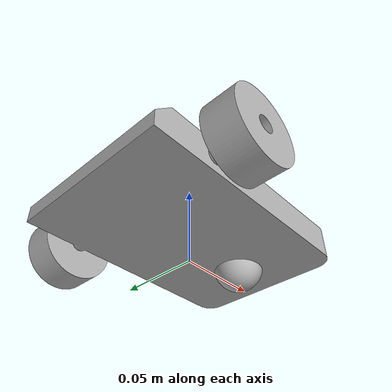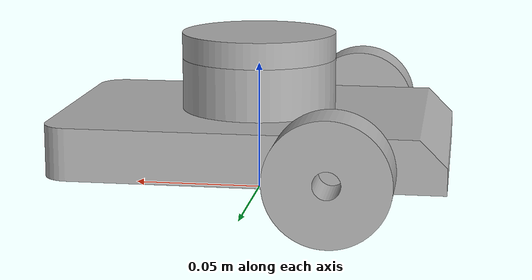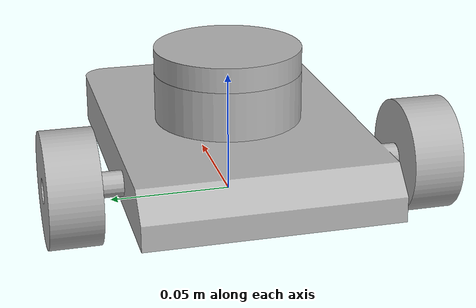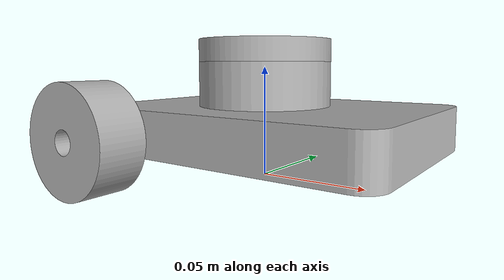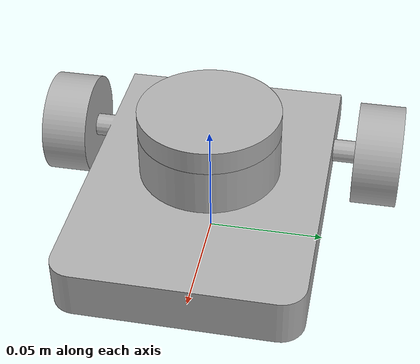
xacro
<?xml version="1.0" ?>
<robot name="rmpbot01" xmlns:xacro="http://www.ros.org/wiki/xacro">

<xacro:include filename="$(find rmpbot01_description)/urdf/materials.xacro" />
<xacro:include filename="$(find rmpbot01_description)/urdf/rmpbot01.trans" />
<xacro:include filename="$(find rmpbot01_description)/urdf/rmpbot01.gazebo" />
<link name="base_link">
  <inertial>
    <origin xyz="0.0006838460087994497 2.5818769471054665e-17 0.025615984582858856" rpy="0 0 0"/>
    <mass value="2.7652492954482564"/>
    <inertia ixx="0.002294" iyy="0.004534" izz="0.006344" ixy="-0.0" iyz="0.0" ixz="-1.3e-05"/>
  </inertial>
  <visual>
    <origin xyz="0 0 0" rpy="0 0 0"/>
    <geometry>
      <mesh filename="package://rmpbot01_description/meshes/base_link.stl" scale="0.001 0.001 0.001"/>
    </geometry>
    <material name="silver"/>
  </visual>
  <collision>
    <origin xyz="0 0 0" rpy="0 0 0"/>
    <geometry>
      <mesh filename="package://rmpbot01_description/meshes/base_link.stl" scale="0.001 0.001 0.001"/>
    </geometry>
  </collision>
</link>

<link name="lidar_1">
  <inertial>
    <origin xyz="5.026061718855929e-18 0.0 0.0050000000000000044" rpy="0 0 0"/>
    <mass value="0.2219535209761188"/>
    <inertia ixx="5.2e-05" iyy="5.2e-05" izz="0.0001" ixy="0.0" iyz="0.0" ixz="-0.0"/>
  </inertial>
  <visual>
    <origin xyz="-0.0 -0.0 -0.0525" rpy="0 0 0"/>
    <geometry>
      <mesh filename="package://rmpbot01_description/meshes/lidar_1.stl" scale="0.001 0.001 0.001"/>
    </geometry>
    <material name="silver"/>
  </visual>
  <collision>
    <origin xyz="-0.0 -0.0 -0.0525" rpy="0 0 0"/>
    <geometry>
      <mesh filename="package://rmpbot01_description/meshes/lidar_1.stl" scale="0.001 0.001 0.001"/>
    </geometry>
  </collision>
</link>

<link name="right_wheel_1">
  <inertial>
    <origin xyz="-2.713801405818117e-14 -0.009999999999999981 -3.469446951953614e-18" rpy="0 0 0"/>
    <mass value="0.2373669599327933"/>
    <inertia ixx="3.9e-05" iyy="6.3e-05" izz="3.9e-05" ixy="-0.0" iyz="0.0" ixz="-0.0"/>
  </inertial>
  <visual>
    <origin xyz="0.035 0.06 -0.0225" rpy="0 0 0"/>
    <geometry>
      <mesh filename="package://rmpbot01_description/meshes/right_wheel_1.stl" scale="0.001 0.001 0.001"/>
    </geometry>
    <material name="silver"/>
  </visual>
  <collision>
    <origin xyz="0.035 0.06 -0.0225" rpy="0 0 0"/>
    <geometry>
      <mesh filename="package://rmpbot01_description/meshes/right_wheel_1.stl" scale="0.001 0.001 0.001"/>
    </geometry>
  </collision>
</link>

<link name="left_wheel_1">
  <inertial>
    <origin xyz="-2.713801405818117e-14 0.009999999999999981 -3.469446951953614e-18" rpy="0 0 0"/>
    <mass value="0.2373669599327933"/>
    <inertia ixx="3.9e-05" iyy="6.3e-05" izz="3.9e-05" ixy="0.0" iyz="-0.0" ixz="-0.0"/>
  </inertial>
  <visual>
    <origin xyz="0.035 -0.06 -0.0225" rpy="0 0 0"/>
    <geometry>
      <mesh filename="package://rmpbot01_description/meshes/left_wheel_1.stl" scale="0.001 0.001 0.001"/>
    </geometry>
    <material name="silver"/>
  </visual>
  <collision>
    <origin xyz="0.035 -0.06 -0.0225" rpy="0 0 0"/>
    <geometry>
      <mesh filename="package://rmpbot01_description/meshes/left_wheel_1.stl" scale="0.001 0.001 0.001"/>
    </geometry>
  </collision>
</link>

<link name="caster_1">
  <inertial>
    <origin xyz="-0.029999999999999978 2.2594731004659047e-17 -0.0045901960387913065" rpy="0 0 0"/>
    <mass value="0.04320069502262114"/>
    <inertia ixx="2e-06" iyy="2e-06" izz="4e-06" ixy="-0.0" iyz="-0.0" ixz="0.0"/>
  </inertial>
  <visual>
    <origin xyz="-0.075 -0.0 -0.0125" rpy="0 0 0"/>
    <geometry>
      <mesh filename="package://rmpbot01_description/meshes/caster_1.stl" scale="0.001 0.001 0.001"/>
    </geometry>
    <material name="silver"/>
  </visual>
  <collision>
    <origin xyz="-0.075 -0.0 -0.0125" rpy="0 0 0"/>
    <geometry>
      <mesh filename="package://rmpbot01_description/meshes/caster_1.stl" scale="0.001 0.001 0.001"/>
    </geometry>
  </collision>
</link>

<joint name="Rigid 1" type="fixed">
  <origin xyz="0.0 0.0 0.0525" rpy="0 0 0"/>
  <parent link="base_link"/>
  <child link="lidar_1"/>
</joint>

<joint name="Revolute 2" type="continuous">
  <origin xyz="-0.035 -0.06 0.0225" rpy="0 0 0"/>
  <parent link="base_link"/>
  <child link="right_wheel_1"/>
  <axis xyz="0.0 1.0 0.0"/>
</joint>

<joint name="Revolute 3" type="continuous">
  <origin xyz="-0.035 0.06 0.0225" rpy="0 0 0"/>
  <parent link="base_link"/>
  <child link="left_wheel_1"/>
  <axis xyz="0.0 1.0 0.0"/>
</joint>

<joint name="Rigid 4" type="fixed">
  <origin xyz="0.075 0.0 0.0125" rpy="0 0 0"/>
  <parent link="base_link"/>
  <child link="caster_1"/>
</joint>

</robot>

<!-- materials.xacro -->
<robot name="rmpbot01" xmlns:xacro="http://www.ros.org/wiki/xacro" >

<material name="silver">
  <color rgba="0.700 0.700 0.700 1.000"/>
</material>

</robot>

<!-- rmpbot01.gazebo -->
<robot name="rmpbot01" xmlns:xacro="http://www.ros.org/wiki/xacro" >

<xacro:property name="body_color" value="Gazebo/Silver" />

<gazebo>
  <plugin name="control" filename="libgazebo_ros_control.so"/>
</gazebo>
<gazebo reference="base_link">
  <material>${body_color}</material>
  <mu1>0.2</mu1>
  <mu2>0.2</mu2>
  <selfCollide>true</selfCollide>
  <gravity>true</gravity>
</gazebo>

<gazebo reference="lidar_1">
  <material>${body_color}</material>
  <mu1>0.2</mu1>
  <mu2>0.2</mu2>
  <selfCollide>true</selfCollide>
</gazebo>

<gazebo reference="right_wheel_1">
  <material>${body_color}</material>
  <mu1>0.2</mu1>
  <mu2>0.2</mu2>
  <selfCollide>true</selfCollide>
</gazebo>

<gazebo reference="left_wheel_1">
  <material>${body_color}</material>
  <mu1>0.2</mu1>
  <mu2>0.2</mu2>
  <selfCollide>true</selfCollide>
</gazebo>

<gazebo reference="caster_1">
  <material>${body_color}</material>
  <mu1>0.2</mu1>
  <mu2>0.2</mu2>
  <selfCollide>true</selfCollide>
</gazebo>
<gazebo>
  <plugin name="differential_drive_controller" filename="libgazebo_ros_diff_drive.so">

    <!-- Plugin update rate in Hz -->
    <updateRate>10</updateRate>

    <!-- Name of left joint, defaults to `left_joint` -->
    <leftJoint>Revolute 3</leftJoint>

    <!-- Name of right joint, defaults to `right_joint` -->
    <rightJoint>Revolute 2</rightJoint>

    <!-- The distance from the center of one wheel to the other, in meters, defaults to 0.34 m -->
    <wheelSeparation>0.5380</wheelSeparation>

    <!-- Diameter of the wheels, in meters, defaults to 0.15 m -->
    <wheelDiameter>0.2410</wheelDiameter>

    <!-- Wheel acceleration, in rad/s^2, defaults to 0.0 rad/s^2 -->
    <wheelAcceleration>1.0</wheelAcceleration>

    <!-- Maximum torque which the wheels can produce, in Nm, defaults to 5 Nm -->
    <wheelTorque>50</wheelTorque>

    <!-- Topic to receive geometry_msgs/Twist message commands, defaults to `cmd_vel` -->
    <commandTopic>cmd_vel</commandTopic>

    <!-- Topic to publish nav_msgs/Odometry messages, defaults to `odom` -->
    <odometryTopic>odom</odometryTopic>

    <!-- Odometry frame, defaults to `odom` -->
    <odometryFrame>odom</odometryFrame>

    <!-- Robot frame to calculate odometry from, defaults to `base_footprint` -->
    <robotBaseFrame>base_link</robotBaseFrame>

    <!-- Odometry source, 0 for ENCODER, 1 for WORLD, defaults to WORLD -->
    <odometrySource>1</odometrySource>

    <!-- Set to true to publish transforms for the wheel links, defaults to false -->
    <publishWheelTF>false</publishWheelTF>

    <!-- Set to true to publish transforms for the odometry, defaults to true -->
    <publishOdom>false</publishOdom>

    <!-- Set to true to publish sensor_msgs/JointState on /joint_states for the wheel joints, defaults to false -->
    <publishWheelJointState>true</publishWheelJointState>

    <!-- Set to true to swap right and left wheels, defaults to true -->
    <legacyMode>false</legacyMode>
  </plugin>
</gazebo>
<gazebo reference="lidar_1">
    <sensor type="ray" name="head_hokuyo_sensor">
      <pose>0 0 0 0 0 0</pose>
      <visualize>true</visualize>
      <update_rate>40</update_rate>
      <ray>
        <scan>
          <horizontal>
            <samples>720</samples>
            <resolution>1</resolution>
            <min_angle>-1.570796</min_angle>
            <max_angle>1.570796</max_angle>
          </horizontal>
        </scan>
        <range>
          <min>0.10</min>
          <max>30.0</max>
          <resolution>0.01</resolution>
        </range>
        <noise>
          <type>gaussian</type>
          <mean>0.0</mean>
          <stddev>0.01</stddev>
        </noise>
      </ray>
      <plugin name="gazebo_ros_head_hokuyo_controller" filename="libgazebo_ros_laser.so">
        <topicName>/scan</topicName>
        <frameName>lidar_1</frameName>
      </plugin>
    </sensor>
  </gazebo>
</robot>
